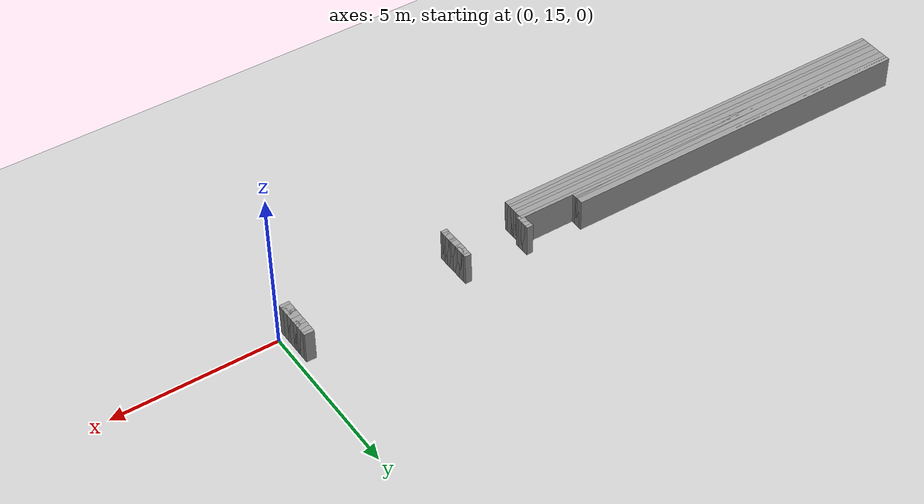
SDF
<sdf version="1.6">
 <world name="GridMap">
  <include><uri>model://sun</uri></include>
  <include><uri>model://ground_plane</uri></include>
  <model name="GridMap">
   <link name="Wall_(1.5,153.0)">
    <collision name="Wall_(1.5,153.0)_Collision">
     <geometry><box><size>0.30000000000000004 0.2 1.0</size></box></geometry>
     <pose>-0.15000000000000002 15.3 0.5 0 -0 0</pose>
    </collision>
    <visual name="Wall_(1.5,153.0)_Visual">
     <geometry><box><size>0.30000000000000004 0.2 1.0</size></box></geometry>
     <pose>-0.15000000000000002 15.3 0.5 0 -0 0</pose>
     <material>
      <script><uri>file://media/materials/scripts/gazebo.material</uri><name>Gazebo/Grey</name></script>
      <ambient>1 1 1 1</ambient>
     </material>
     <meta><layer>0</layer></meta>
    </visual>
    <pose>0 0 0.5 0 -0 0</pose>
   </link>
   <link name="Wall_(51.0,153.0)">
    <collision name="Wall_(51.0,153.0)_Collision">
     <geometry><box><size>0.2 0.2 1.0</size></box></geometry>
     <pose>-5.1000000000000005 15.3 0.5 0 -0 0</pose>
    </collision>
    <visual name="Wall_(51.0,153.0)_Visual">
     <geometry><box><size>0.2 0.2 1.0</size></box></geometry>
     <pose>-5.1000000000000005 15.3 0.5 0 -0 0</pose>
     <material>
      <script><uri>file://media/materials/scripts/gazebo.material</uri><name>Gazebo/Grey</name></script>
      <ambient>1 1 1 1</ambient>
     </material>
     <meta><layer>0</layer></meta>
    </visual>
    <pose>0 0 0.5 0 -0 0</pose>
   </link>
   <link name="Wall_(135.0,153.0)">
    <collision name="Wall_(135.0,153.0)_Collision">
     <geometry><box><size>12.8 0.2 1.0</size></box></geometry>
     <pose>-13.5 15.3 0.5 0 -0 0</pose>
    </collision>
    <visual name="Wall_(135.0,153.0)_Visual">
     <geometry><box><size>12.8 0.2 1.0</size></box></geometry>
     <pose>-13.5 15.3 0.5 0 -0 0</pose>
     <material>
      <script><uri>file://media/materials/scripts/gazebo.material</uri><name>Gazebo/Grey</name></script>
      <ambient>1 1 1 1</ambient>
     </material>
     <meta><layer>0</layer></meta>
    </visual>
    <pose>0 0 0.5 0 -0 0</pose>
   </link>
   <link name="Wall_(1.5,154.0)">
    <collision name="Wall_(1.5,154.0)_Collision">
     <geometry><box><size>0.30000000000000004 0.2 1.0</size></box></geometry>
     <pose>-0.15000000000000002 15.4 0.5 0 -0 0</pose>
    </collision>
    <visual name="Wall_(1.5,154.0)_Visual">
     <geometry><box><size>0.30000000000000004 0.2 1.0</size></box></geometry>
     <pose>-0.15000000000000002 15.4 0.5 0 -0 0</pose>
     <material>
      <script><uri>file://media/materials/scripts/gazebo.material</uri><name>Gazebo/Grey</name></script>
      <ambient>1 1 1 1</ambient>
     </material>
     <meta><layer>0</layer></meta>
    </visual>
    <pose>0 0 0.5 0 -0 0</pose>
   </link>
   <link name="Wall_(51.0,154.0)">
    <collision name="Wall_(51.0,154.0)_Collision">
     <geometry><box><size>0.2 0.2 1.0</size></box></geometry>
     <pose>-5.1000000000000005 15.4 0.5 0 -0 0</pose>
    </collision>
    <visual name="Wall_(51.0,154.0)_Visual">
     <geometry><box><size>0.2 0.2 1.0</size></box></geometry>
     <pose>-5.1000000000000005 15.4 0.5 0 -0 0</pose>
     <material>
      <script><uri>file://media/materials/scripts/gazebo.material</uri><name>Gazebo/Grey</name></script>
      <ambient>1 1 1 1</ambient>
     </material>
     <meta><layer>0</layer></meta>
    </visual>
    <pose>0 0 0.5 0 -0 0</pose>
   </link>
   <link name="Wall_(135.0,154.0)">
    <collision name="Wall_(135.0,154.0)_Collision">
     <geometry><box><size>12.8 0.2 1.0</size></box></geometry>
     <pose>-13.5 15.4 0.5 0 -0 0</pose>
    </collision>
    <visual name="Wall_(135.0,154.0)_Visual">
     <geometry><box><size>12.8 0.2 1.0</size></box></geometry>
     <pose>-13.5 15.4 0.5 0 -0 0</pose>
     <material>
      <script><uri>file://media/materials/scripts/gazebo.material</uri><name>Gazebo/Grey</name></script>
      <ambient>1 1 1 1</ambient>
     </material>
     <meta><layer>0</layer></meta>
    </visual>
    <pose>0 0 0.5 0 -0 0</pose>
   </link>
   <link name="Wall_(1.5,155.0)">
    <collision name="Wall_(1.5,155.0)_Collision">
     <geometry><box><size>0.30000000000000004 0.2 1.0</size></box></geometry>
     <pose>-0.15000000000000002 15.5 0.5 0 -0 0</pose>
    </collision>
    <visual name="Wall_(1.5,155.0)_Visual">
     <geometry><box><size>0.30000000000000004 0.2 1.0</size></box></geometry>
     <pose>-0.15000000000000002 15.5 0.5 0 -0 0</pose>
     <material>
      <script><uri>file://media/materials/scripts/gazebo.material</uri><name>Gazebo/Grey</name></script>
      <ambient>1 1 1 1</ambient>
     </material>
     <meta><layer>0</layer></meta>
    </visual>
    <pose>0 0 0.5 0 -0 0</pose>
   </link>
   <link name="Wall_(51.0,155.0)">
    <collision name="Wall_(51.0,155.0)_Collision">
     <geometry><box><size>0.2 0.2 1.0</size></box></geometry>
     <pose>-5.1000000000000005 15.5 0.5 0 -0 0</pose>
    </collision>
    <visual name="Wall_(51.0,155.0)_Visual">
     <geometry><box><size>0.2 0.2 1.0</size></box></geometry>
     <pose>-5.1000000000000005 15.5 0.5 0 -0 0</pose>
     <material>
      <script><uri>file://media/materials/scripts/gazebo.material</uri><name>Gazebo/Grey</name></script>
      <ambient>1 1 1 1</ambient>
     </material>
     <meta><layer>0</layer></meta>
    </visual>
    <pose>0 0 0.5 0 -0 0</pose>
   </link>
   <link name="Wall_(135.0,155.0)">
    <collision name="Wall_(135.0,155.0)_Collision">
     <geometry><box><size>12.8 0.2 1.0</size></box></geometry>
     <pose>-13.5 15.5 0.5 0 -0 0</pose>
    </collision>
    <visual name="Wall_(135.0,155.0)_Visual">
     <geometry><box><size>12.8 0.2 1.0</size></box></geometry>
     <pose>-13.5 15.5 0.5 0 -0 0</pose>
     <material>
      <script><uri>file://media/materials/scripts/gazebo.material</uri><name>Gazebo/Grey</name></script>
      <ambient>1 1 1 1</ambient>
     </material>
     <meta><layer>0</layer></meta>
    </visual>
    <pose>0 0 0.5 0 -0 0</pose>
   </link>
   <link name="Wall_(1.5,156.0)">
    <collision name="Wall_(1.5,156.0)_Collision">
     <geometry><box><size>0.30000000000000004 0.2 1.0</size></box></geometry>
     <pose>-0.15000000000000002 15.600000000000001 0.5 0 -0 0</pose>
    </collision>
    <visual name="Wall_(1.5,156.0)_Visual">
     <geometry><box><size>0.30000000000000004 0.2 1.0</size></box></geometry>
     <pose>-0.15000000000000002 15.600000000000001 0.5 0 -0 0</pose>
     <material>
      <script><uri>file://media/materials/scripts/gazebo.material</uri><name>Gazebo/Grey</name></script>
      <ambient>1 1 1 1</ambient>
     </material>
     <meta><layer>0</layer></meta>
    </visual>
    <pose>0 0 0.5 0 -0 0</pose>
   </link>
   <link name="Wall_(51.0,156.0)">
    <collision name="Wall_(51.0,156.0)_Collision">
     <geometry><box><size>0.2 0.2 1.0</size></box></geometry>
     <pose>-5.1000000000000005 15.600000000000001 0.5 0 -0 0</pose>
    </collision>
    <visual name="Wall_(51.0,156.0)_Visual">
     <geometry><box><size>0.2 0.2 1.0</size></box></geometry>
     <pose>-5.1000000000000005 15.600000000000001 0.5 0 -0 0</pose>
     <material>
      <script><uri>file://media/materials/scripts/gazebo.material</uri><name>Gazebo/Grey</name></script>
      <ambient>1 1 1 1</ambient>
     </material>
     <meta><layer>0</layer></meta>
    </visual>
    <pose>0 0 0.5 0 -0 0</pose>
   </link>
   <link name="Wall_(135.0,156.0)">
    <collision name="Wall_(135.0,156.0)_Collision">
     <geometry><box><size>12.8 0.2 1.0</size></box></geometry>
     <pose>-13.5 15.600000000000001 0.5 0 -0 0</pose>
    </collision>
    <visual name="Wall_(135.0,156.0)_Visual">
     <geometry><box><size>12.8 0.2 1.0</size></box></geometry>
     <pose>-13.5 15.600000000000001 0.5 0 -0 0</pose>
     <material>
      <script><uri>file://media/materials/scripts/gazebo.material</uri><name>Gazebo/Grey</name></script>
      <ambient>1 1 1 1</ambient>
     </material>
     <meta><layer>0</layer></meta>
    </visual>
    <pose>0 0 0.5 0 -0 0</pose>
   </link>
   <link name="Wall_(1.5,157.0)">
    <collision name="Wall_(1.5,157.0)_Collision">
     <geometry><box><size>0.30000000000000004 0.2 1.0</size></box></geometry>
     <pose>-0.15000000000000002 15.700000000000001 0.5 0 -0 0</pose>
    </collision>
    <visual name="Wall_(1.5,157.0)_Visual">
     <geometry><box><size>0.30000000000000004 0.2 1.0</size></box></geometry>
     <pose>-0.15000000000000002 15.700000000000001 0.5 0 -0 0</pose>
     <material>
      <script><uri>file://media/materials/scripts/gazebo.material</uri><name>Gazebo/Grey</name></script>
      <ambient>1 1 1 1</ambient>
     </material>
     <meta><layer>0</layer></meta>
    </visual>
    <pose>0 0 0.5 0 -0 0</pose>
   </link>
   <link name="Wall_(51.0,157.0)">
    <collision name="Wall_(51.0,157.0)_Collision">
     <geometry><box><size>0.2 0.2 1.0</size></box></geometry>
     <pose>-5.1000000000000005 15.700000000000001 0.5 0 -0 0</pose>
    </collision>
    <visual name="Wall_(51.0,157.0)_Visual">
     <geometry><box><size>0.2 0.2 1.0</size></box></geometry>
     <pose>-5.1000000000000005 15.700000000000001 0.5 0 -0 0</pose>
     <material>
      <script><uri>file://media/materials/scripts/gazebo.material</uri><name>Gazebo/Grey</name></script>
      <ambient>1 1 1 1</ambient>
     </material>
     <meta><layer>0</layer></meta>
    </visual>
    <pose>0 0 0.5 0 -0 0</pose>
   </link>
   <link name="Wall_(135.0,157.0)">
    <collision name="Wall_(135.0,157.0)_Collision">
     <geometry><box><size>12.8 0.2 1.0</size></box></geometry>
     <pose>-13.5 15.700000000000001 0.5 0 -0 0</pose>
    </collision>
    <visual name="Wall_(135.0,157.0)_Visual">
     <geometry><box><size>12.8 0.2 1.0</size></box></geometry>
     <pose>-13.5 15.700000000000001 0.5 0 -0 0</pose>
     <material>
      <script><uri>file://media/materials/scripts/gazebo.material</uri><name>Gazebo/Grey</name></script>
      <ambient>1 1 1 1</ambient>
     </material>
     <meta><layer>0</layer></meta>
    </visual>
    <pose>0 0 0.5 0 -0 0</pose>
   </link>
   <link name="Wall_(1.5,158.0)">
    <collision name="Wall_(1.5,158.0)_Collision">
     <geometry><box><size>0.30000000000000004 0.2 1.0</size></box></geometry>
     <pose>-0.15000000000000002 15.8 0.5 0 -0 0</pose>
    </collision>
    <visual name="Wall_(1.5,158.0)_Visual">
     <geometry><box><size>0.30000000000000004 0.2 1.0</size></box></geometry>
     <pose>-0.15000000000000002 15.8 0.5 0 -0 0</pose>
     <material>
      <script><uri>file://media/materials/scripts/gazebo.material</uri><name>Gazebo/Grey</name></script>
      <ambient>1 1 1 1</ambient>
     </material>
     <meta><layer>0</layer></meta>
    </visual>
    <pose>0 0 0.5 0 -0 0</pose>
   </link>
   <link name="Wall_(51.0,158.0)">
    <collision name="Wall_(51.0,158.0)_Collision">
     <geometry><box><size>0.2 0.2 1.0</size></box></geometry>
     <pose>-5.1000000000000005 15.8 0.5 0 -0 0</pose>
    </collision>
    <visual name="Wall_(51.0,158.0)_Visual">
     <geometry><box><size>0.2 0.2 1.0</size></box></geometry>
     <pose>-5.1000000000000005 15.8 0.5 0 -0 0</pose>
     <material>
      <script><uri>file://media/materials/scripts/gazebo.material</uri><name>Gazebo/Grey</name></script>
      <ambient>1 1 1 1</ambient>
     </material>
     <meta><layer>0</layer></meta>
    </visual>
    <pose>0 0 0.5 0 -0 0</pose>
   </link>
   <link name="Wall_(135.0,158.0)">
    <collision name="Wall_(135.0,158.0)_Collision">
     <geometry><box><size>12.8 0.2 1.0</size></box></geometry>
     <pose>-13.5 15.8 0.5 0 -0 0</pose>
    </collision>
    <visual name="Wall_(135.0,158.0)_Visual">
     <geometry><box><size>12.8 0.2 1.0</size></box></geometry>
     <pose>-13.5 15.8 0.5 0 -0 0</pose>
     <material>
      <script><uri>file://media/materials/scripts/gazebo.material</uri><name>Gazebo/Grey</name></script>
      <ambient>1 1 1 1</ambient>
     </material>
     <meta><layer>0</layer></meta>
    </visual>
    <pose>0 0 0.5 0 -0 0</pose>
   </link>
   <link name="Wall_(1.5,159.0)">
    <collision name="Wall_(1.5,159.0)_Collision">
     <geometry><box><size>0.30000000000000004 0.2 1.0</size></box></geometry>
     <pose>-0.15000000000000002 15.9 0.5 0 -0 0</pose>
    </collision>
    <visual name="Wall_(1.5,159.0)_Visual">
     <geometry><box><size>0.30000000000000004 0.2 1.0</size></box></geometry>
     <pose>-0.15000000000000002 15.9 0.5 0 -0 0</pose>
     <material>
      <script><uri>file://media/materials/scripts/gazebo.material</uri><name>Gazebo/Grey</name></script>
      <ambient>1 1 1 1</ambient>
     </material>
     <meta><layer>0</layer></meta>
    </visual>
    <pose>0 0 0.5 0 -0 0</pose>
   </link>
   <link name="Wall_(51.0,159.0)">
    <collision name="Wall_(51.0,159.0)_Collision">
     <geometry><box><size>0.2 0.2 1.0</size></box></geometry>
     <pose>-5.1000000000000005 15.9 0.5 0 -0 0</pose>
    </collision>
    <visual name="Wall_(51.0,159.0)_Visual">
     <geometry><box><size>0.2 0.2 1.0</size></box></geometry>
     <pose>-5.1000000000000005 15.9 0.5 0 -0 0</pose>
     <material>
      <script><uri>file://media/materials/scripts/gazebo.material</uri><name>Gazebo/Grey</name></script>
      <ambient>1 1 1 1</ambient>
     </material>
     <meta><layer>0</layer></meta>
    </visual>
    <pose>0 0 0.5 0 -0 0</pose>
   </link>
   <link name="Wall_(135.0,159.0)">
    <collision name="Wall_(135.0,159.0)_Collision">
     <geometry><box><size>12.8 0.2 1.0</size></box></geometry>
     <pose>-13.5 15.9 0.5 0 -0 0</pose>
    </collision>
    <visual name="Wall_(135.0,159.0)_Visual">
     <geometry><box><size>12.8 0.2 1.0</size></box></geometry>
     <pose>-13.5 15.9 0.5 0 -0 0</pose>
     <material>
      <script><uri>file://media/materials/scripts/gazebo.material</uri><name>Gazebo/Grey</name></script>
      <ambient>1 1 1 1</ambient>
     </material>
     <meta><layer>0</layer></meta>
    </visual>
    <pose>0 0 0.5 0 -0 0</pose>
   </link>
   <link name="Wall_(1.5,160.0)">
    <collision name="Wall_(1.5,160.0)_Collision">
     <geometry><box><size>0.30000000000000004 0.2 1.0</size></box></geometry>
     <pose>-0.15000000000000002 16.0 0.5 0 -0 0</pose>
    </collision>
    <visual name="Wall_(1.5,160.0)_Visual">
     <geometry><box><size>0.30000000000000004 0.2 1.0</size></box></geometry>
     <pose>-0.15000000000000002 16.0 0.5 0 -0 0</pose>
     <material>
      <script><uri>file://media/materials/scripts/gazebo.material</uri><name>Gazebo/Grey</name></script>
      <ambient>1 1 1 1</ambient>
     </material>
     <meta><layer>0</layer></meta>
    </visual>
    <pose>0 0 0.5 0 -0 0</pose>
   </link>
   <link name="Wall_(51.0,160.0)">
    <collision name="Wall_(51.0,160.0)_Collision">
     <geometry><box><size>0.2 0.2 1.0</size></box></geometry>
     <pose>-5.1000000000000005 16.0 0.5 0 -0 0</pose>
    </collision>
    <visual name="Wall_(51.0,160.0)_Visual">
     <geometry><box><size>0.2 0.2 1.0</size></box></geometry>
     <pose>-5.1000000000000005 16.0 0.5 0 -0 0</pose>
     <material>
      <script><uri>file://media/materials/scripts/gazebo.material</uri><name>Gazebo/Grey</name></script>
      <ambient>1 1 1 1</ambient>
     </material>
     <meta><layer>0</layer></meta>
    </visual>
    <pose>0 0 0.5 0 -0 0</pose>
   </link>
   <link name="Wall_(71.0,160.0)">
    <collision name="Wall_(71.0,160.0)_Collision">
     <geometry><box><size>0.2 0.2 1.0</size></box></geometry>
     <pose>-7.1000000000000005 16.0 0.5 0 -0 0</pose>
    </collision>
    <visual name="Wall_(71.0,160.0)_Visual">
     <geometry><box><size>0.2 0.2 1.0</size></box></geometry>
     <pose>-7.1000000000000005 16.0 0.5 0 -0 0</pose>
     <material>
      <script><uri>file://media/materials/scripts/gazebo.material</uri><name>Gazebo/Grey</name></script>
      <ambient>1 1 1 1</ambient>
     </material>
     <meta><layer>0</layer></meta>
    </visual>
    <pose>0 0 0.5 0 -0 0</pose>
   </link>
   <link name="Wall_(143.5,160.0)">
    <collision name="Wall_(143.5,160.0)_Collision">
     <geometry><box><size>11.100000000000001 0.2 1.0</size></box></geometry>
     <pose>-14.350000000000001 16.0 0.5 0 -0 0</pose>
    </collision>
    <visual name="Wall_(143.5,160.0)_Visual">
     <geometry><box><size>11.100000000000001 0.2 1.0</size></box></geometry>
     <pose>-14.350000000000001 16.0 0.5 0 -0 0</pose>
     <material>
      <script><uri>file://media/materials/scripts/gazebo.material</uri><name>Gazebo/Grey</name></script>
      <ambient>1 1 1 1</ambient>
     </material>
     <meta><layer>0</layer></meta>
    </visual>
    <pose>0 0 0.5 0 -0 0</pose>
   </link>
   <link name="Wall_(1.5,161.0)">
    <collision name="Wall_(1.5,161.0)_Collision">
     <geometry><box><size>0.30000000000000004 0.2 1.0</size></box></geometry>
     <pose>-0.15000000000000002 16.1 0.5 0 -0 0</pose>
    </collision>
    <visual name="Wall_(1.5,161.0)_Visual">
     <geometry><box><size>0.30000000000000004 0.2 1.0</size></box></geometry>
     <pose>-0.15000000000000002 16.1 0.5 0 -0 0</pose>
     <material>
      <script><uri>file://media/materials/scripts/gazebo.material</uri><name>Gazebo/Grey</name></script>
      <ambient>1 1 1 1</ambient>
     </material>
     <meta><layer>0</layer></meta>
    </visual>
    <pose>0 0 0.5 0 -0 0</pose>
   </link>
   <link name="Wall_(51.0,161.0)">
    <collision name="Wall_(51.0,161.0)_Collision">
     <geometry><box><size>0.2 0.2 1.0</size></box></geometry>
     <pose>-5.1000000000000005 16.1 0.5 0 -0 0</pose>
    </collision>
    <visual name="Wall_(51.0,161.0)_Visual">
     <geometry><box><size>0.2 0.2 1.0</size></box></geometry>
     <pose>-5.1000000000000005 16.1 0.5 0 -0 0</pose>
     <material>
      <script><uri>file://media/materials/scripts/gazebo.material</uri><name>Gazebo/Grey</name></script>
      <ambient>1 1 1 1</ambient>
     </material>
     <meta><layer>0</layer></meta>
    </visual>
    <pose>0 0 0.5 0 -0 0</pose>
   </link>
   <link name="Wall_(71.0,161.0)">
    <collision name="Wall_(71.0,161.0)_Collision">
     <geometry><box><size>0.2 0.2 1.0</size></box></geometry>
     <pose>-7.1000000000000005 16.1 0.5 0 -0 0</pose>
    </collision>
    <visual name="Wall_(71.0,161.0)_Visual">
     <geometry><box><size>0.2 0.2 1.0</size></box></geometry>
     <pose>-7.1000000000000005 16.1 0.5 0 -0 0</pose>
     <material>
      <script><uri>file://media/materials/scripts/gazebo.material</uri><name>Gazebo/Grey</name></script>
      <ambient>1 1 1 1</ambient>
     </material>
     <meta><layer>0</layer></meta>
    </visual>
    <pose>0 0 0.5 0 -0 0</pose>
   </link>
   <link name="Wall_(143.5,161.0)">
    <collision name="Wall_(143.5,161.0)_Collision">
     <geometry><box><size>11.100000000000001 0.2 1.0</size></box></geometry>
     <pose>-14.350000000000001 16.1 0.5 0 -0 0</pose>
    </collision>
    <visual name="Wall_(143.5,161.0)_Visual">
     <geometry><box><size>11.100000000000001 0.2 1.0</size></box></geometry>
     <pose>-14.350000000000001 16.1 0.5 0 -0 0</pose>
     <material>
      <script><uri>file://media/materials/scripts/gazebo.material</uri><name>Gazebo/Grey</name></script>
      <ambient>1 1 1 1</ambient>
     </material>
     <meta><layer>0</layer></meta>
    </visual>
    <pose>0 0 0.5 0 -0 0</pose>
   </link>
   <link name="Wall_(1.5,162.0)">
    <collision name="Wall_(1.5,162.0)_Collision">
     <geometry><box><size>0.30000000000000004 0.2 1.0</size></box></geometry>
     <pose>-0.15000000000000002 16.2 0.5 0 -0 0</pose>
    </collision>
    <visual name="Wall_(1.5,162.0)_Visual">
     <geometry><box><size>0.30000000000000004 0.2 1.0</size></box></geometry>
     <pose>-0.15000000000000002 16.2 0.5 0 -0 0</pose>
     <material>
      <script><uri>file://media/materials/scripts/gazebo.material</uri><name>Gazebo/Grey</name></script>
      <ambient>1 1 1 1</ambient>
     </material>
     <meta><layer>0</layer></meta>
    </visual>
    <pose>0 0 0.5 0 -0 0</pose>
   </link>
   <link name="Wall_(51.0,162.0)">
    <collision name="Wall_(51.0,162.0)_Collision">
     <geometry><box><size>0.2 0.2 1.0</size></box></geometry>
     <pose>-5.1000000000000005 16.2 0.5 0 -0 0</pose>
    </collision>
    <visual name="Wall_(51.0,162.0)_Visual">
     <geometry><box><size>0.2 0.2 1.0</size></box></geometry>
     <pose>-5.1000000000000005 16.2 0.5 0 -0 0</pose>
     <material>
      <script><uri>file://media/materials/scripts/gazebo.material</uri><name>Gazebo/Grey</name></script>
      <ambient>1 1 1 1</ambient>
     </material>
     <meta><layer>0</layer></meta>
    </visual>
    <pose>0 0 0.5 0 -0 0</pose>
   </link>
   <link name="Wall_(71.0,162.0)">
    <collision name="Wall_(71.0,162.0)_Collision">
     <geometry><box><size>0.2 0.2 1.0</size></box></geometry>
     <pose>-7.1000000000000005 16.2 0.5 0 -0 0</pose>
    </collision>
    <visual name="Wall_(71.0,162.0)_Visual">
     <geometry><box><size>0.2 0.2 1.0</size></box></geometry>
     <pose>-7.1000000000000005 16.2 0.5 0 -0 0</pose>
     <material>
      <script><uri>file://media/materials/scripts/gazebo.material</uri><name>Gazebo/Grey</name></script>
      <ambient>1 1 1 1</ambient>
     </material>
     <meta><layer>0</layer></meta>
    </visual>
    <pose>0 0 0.5 0 -0 0</pose>
   </link>
   <link name="Wall_(143.5,162.0)">
    <collision name="Wall_(143.5,162.0)_Collision">
     <geometry><box><size>11.100000000000001 0.2 1.0</size></box></geometry>
     <pose>-14.350000000000001 16.2 0.5 0 -0 0</pose>
    </collision>
    <visual name="Wall_(143.5,162.0)_Visual">
     <geometry><box><size>11.100000000000001 0.2 1.0</size></box></geometry>
     <pose>-14.350000000000001 16.2 0.5 0 -0 0</pose>
     <material>
      <script><uri>file://media/materials/scripts/gazebo.material</uri><name>Gazebo/Grey</name></script>
      <ambient>1 1 1 1</ambient>
     </material>
     <meta><layer>0</layer></meta>
    </visual>
    <pose>0 0 0.5 0 -0 0</pose>
   </link>
   <link name="Wall_(1.5,163.0)">
    <collision name="Wall_(1.5,163.0)_Collision">
     <geometry><box><size>0.30000000000000004 0.2 1.0</size></box></geometry>
     <pose>-0.15000000000000002 16.3 0.5 0 -0 0</pose>
    </collision>
    <visual name="Wall_(1.5,163.0)_Visual">
     <geometry><box><size>0.30000000000000004 0.2 1.0</size></box></geometry>
     <pose>-0.15000000000000002 16.3 0.5 0 -0 0</pose>
     <material>
      <script><uri>file://media/materials/scripts/gazebo.material</uri><name>Gazebo/Grey</name></script>
      <ambient>1 1 1 1</ambient>
     </material>
     <meta><layer>0</layer></meta>
    </visual>
    <pose>0 0 0.5 0 -0 0</pose>
   </link>
   <link name="Wall_(51.0,163.0)">
    <collision name="Wall_(51.0,163.0)_Collision">
     <geometry><box><size>0.2 0.2 1.0</size></box></geometry>
     <pose>-5.1000000000000005 16.3 0.5 0 -0 0</pose>
    </collision>
    <visual name="Wall_(51.0,163.0)_Visual">
     <geometry><box><size>0.2 0.2 1.0</size></box></geometry>
     <pose>-5.1000000000000005 16.3 0.5 0 -0 0</pose>
     <material>
      <script><uri>file://media/materials/scripts/gazebo.material</uri><name>Gazebo/Grey</name></script>
      <ambient>1 1 1 1</ambient>
     </material>
     <meta><layer>0</layer></meta>
    </visual>
    <pose>0 0 0.5 0 -0 0</pose>
   </link>
   <link name="Wall_(71.0,163.0)">
    <collision name="Wall_(71.0,163.0)_Collision">
     <geometry><box><size>0.2 0.2 1.0</size></box></geometry>
     <pose>-7.1000000000000005 16.3 0.5 0 -0 0</pose>
    </collision>
    <visual name="Wall_(71.0,163.0)_Visual">
     <geometry><box><size>0.2 0.2 1.0</size></box></geometry>
     <pose>-7.1000000000000005 16.3 0.5 0 -0 0</pose>
     <material>
      <script><uri>file://media/materials/scripts/gazebo.material</uri><name>Gazebo/Grey</name></script>
      <ambient>1 1 1 1</ambient>
     </material>
     <meta><layer>0</layer></meta>
    </visual>
    <pose>0 0 0.5 0 -0 0</pose>
   </link>
   <link name="Wall_(143.5,163.0)">
    <collision name="Wall_(143.5,163.0)_Collision">
     <geometry><box><size>11.100000000000001 0.2 1.0</size></box></geometry>
     <pose>-14.350000000000001 16.3 0.5 0 -0 0</pose>
    </collision>
    <visual name="Wall_(143.5,163.0)_Visual">
     <geometry><box><size>11.100000000000001 0.2 1.0</size></box></geometry>
     <pose>-14.350000000000001 16.3 0.5 0 -0 0</pose>
     <material>
      <script><uri>file://media/materials/scripts/gazebo.material</uri><name>Gazebo/Grey</name></script>
      <ambient>1 1 1 1</ambient>
     </material>
     <meta><layer>0</layer></meta>
    </visual>
    <pose>0 0 0.5 0 -0 0</pose>
   </link>
   <link name="Wall_(1.5,164.0)">
    <collision name="Wall_(1.5,164.0)_Collision">
     <geometry><box><size>0.30000000000000004 0.2 1.0</size></box></geometry>
     <pose>-0.15000000000000002 16.400000000000002 0.5 0 -0 0</pose>
    </collision>
    <visual name="Wall_(1.5,164.0)_Visual">
     <geometry><box><size>0.30000000000000004 0.2 1.0</size></box></geometry>
     <pose>-0.15000000000000002 16.400000000000002 0.5 0 -0 0</pose>
     <material>
      <script><uri>file://media/materials/scripts/gazebo.material</uri><name>Gazebo/Grey</name></script>
      <ambient>1 1 1 1</ambient>
     </material>
     <meta><layer>0</layer></meta>
    </visual>
    <pose>0 0 0.5 0 -0 0</pose>
   </link>
   <static>1</static>
  </model>
 </world>
</sdf>
